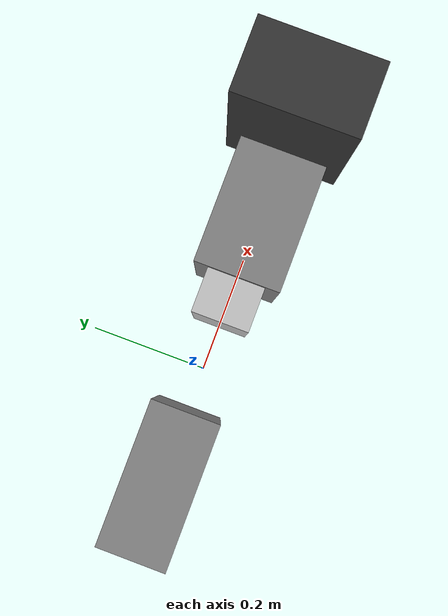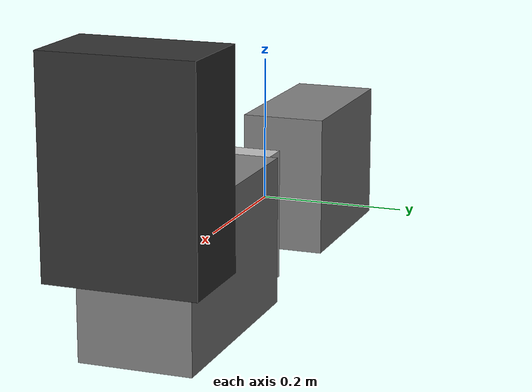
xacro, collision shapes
<?xml version="1.0"?>
<robot name="g500_arm" xmlns:xacro="http://www.ros.org/wiki/xacro">
  <!-- base link is the body of the robot -->
  <link name="base">
    <visual>
      <origin rpy="0 0 0" xyz="0.0 0 0.0"/>
      <geometry>
        <mesh filename="package://g500_arm_description/meshes/robot/ECA/arm0.3ds" scale="0.001 0.001 0.001"/>
      </geometry>
      <material name="Grey">
        <color rgba="0.5 0.5 0.5 1.0"/>
      </material>
    </visual>
    <collision>
      <origin rpy="0 0 0" xyz="-0.2 0 0.0"/>
      <geometry>
        <box size="0.25 0.12 0.2" />
      </geometry>
    </collision>
  </link>

  <joint name="q1" type="revolute">
    <parent link="base"/>
    <child link="L0"/>
    <axis xyz="0 0 1"/>
    <origin rpy="0.0 0.0 0.0" xyz="0.0 0.0 0.0"/>
    <limit effort="30" lower="-0.43" upper="1.54" velocity="0.025"/>
  </joint>

  <link name="L0">
  	<visual>
      <origin xyz="0.0 0 0" rpy="0 0 0"/>
      <geometry>
        <mesh filename="package://g500_arm_description/meshes/robot/ECA/arm1.3ds" scale="0.001 0.001 0.001"/>
      </geometry>
      <material name="LightGrey">
        <color rgba="0.75 0.75 0.75 1.0"/>
      </material>
    </visual>
    <collision>
      <origin xyz="0.18 0 0" rpy="0 0 0"/>
		  <geometry>
				<box size="0.2 0.1 0.18" />
			</geometry>
		</collision>
   </link>

  <joint name="q2" type="revolute">
    <parent link="L0"/>
    <child link="L1"/>
    <axis xyz="0 0 1"/>
    <origin rpy="-1.57 0.0 0.0" xyz="0.108 0.0 0.0"/>
    <limit effort="30" lower="-0.10" upper="1.45" velocity="0.025"/>
  </joint>

   <link name="L1">
    <visual>
      <origin rpy="0 0 0" xyz="0.0 0.0 0.0"/>
      <geometry>
        <mesh filename="package://g500_arm_description/meshes/robot/ECA/arm2.3ds" scale="0.001 0.001 0.001"/>
      </geometry>
      <material name="Grey">
        <color rgba="0.5 0.5 0.5 1.0"/>
      </material>
    </visual>
    <collision>
      <origin rpy="0 0 0" xyz="0.2 0 0.0"/>
		<geometry>
      <box size="0.3 0.2 0.15" />
		</geometry>
	 </collision>
  </link>

  <joint name="q3" type="revolute">
    <parent link="L1"/>
    <child link="L2"/>
    <axis xyz="0 0 1"/>
    <origin rpy="0.0 0 0" xyz="0.231 0.0 0.0"/>
    <limit effort="30" lower="-1.22" upper="0.645" velocity="0.09"/>
  </joint>

  <link name="L2">
    <visual>
      <origin rpy="0 0 0" xyz="0.0 0.0 0.0"/>
        <geometry>
          <mesh filename="package://g500_arm_description/meshes/robot/ECA/arm3.3ds" scale="0.001 0.001 0.001"/>
        </geometry>
        <material name="LightGrey">
          <color rgba="0.75 0.75 0.75 1.0"/>
        </material>
    </visual>
    <collision>
      <origin rpy="0 0 0" xyz="0.0 0.0 0.0"/>
      <geometry>
        <box size="0.15 0.08 0.12" />
      </geometry>
    </collision>
  </link>

  <joint name="q4" type="revolute">
    <parent link="L2"/>
    <child link="L3"/>
    <axis xyz="0 0 1"/>
    <origin rpy="1.57 0 0" xyz="0.1 0.0 0.0"/>
    <limit effort="30" lower="-3.12" upper="3.12" velocity="0.09"/>
  </joint>

  <link name="L3">
    <visual>
      <origin rpy="0 0 0" xyz="0.0 0.0 0.0"/>
      <geometry>
        <mesh filename="package://g500_arm_description/meshes/robot/ECA/arm4.3ds" scale="0.001 0.001 0.001"/>
      </geometry>
      <material name="LightBlack">
        <color rgba="0.2 0.2 0.2 1.0"/>
      </material>
    </visual>
    <collision>
      <origin rpy="0 0 0" xyz="0 0 0.15"/>
      <geometry>
        <box size="0.12 0.2 0.28" />
      </geometry>
    </collision>
  </link>

  <joint name="jaw" type="fixed">
    <parent link="L3"/>
    <child link="L4"/>
    <axis xyz="0 0 1"/>
    <origin rpy="0 0 0" xyz="0.0 0.0 0.328"/>
  </joint>

  <link name="L4">
  </link>

</robot>
